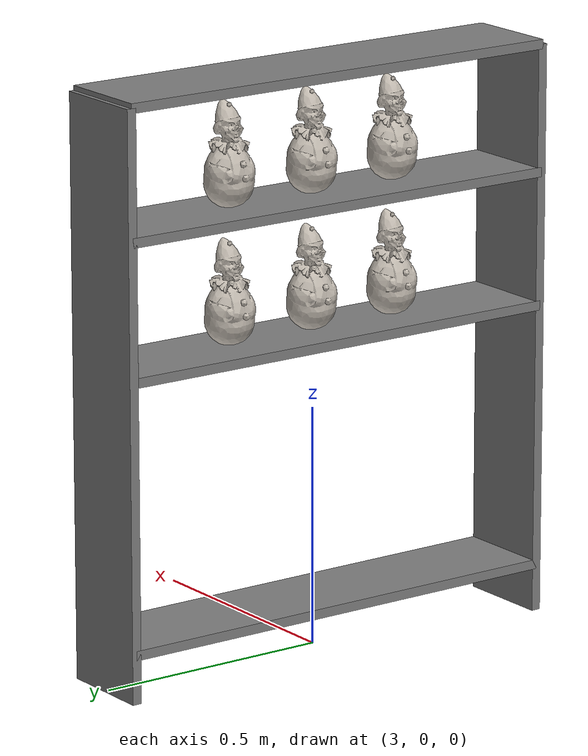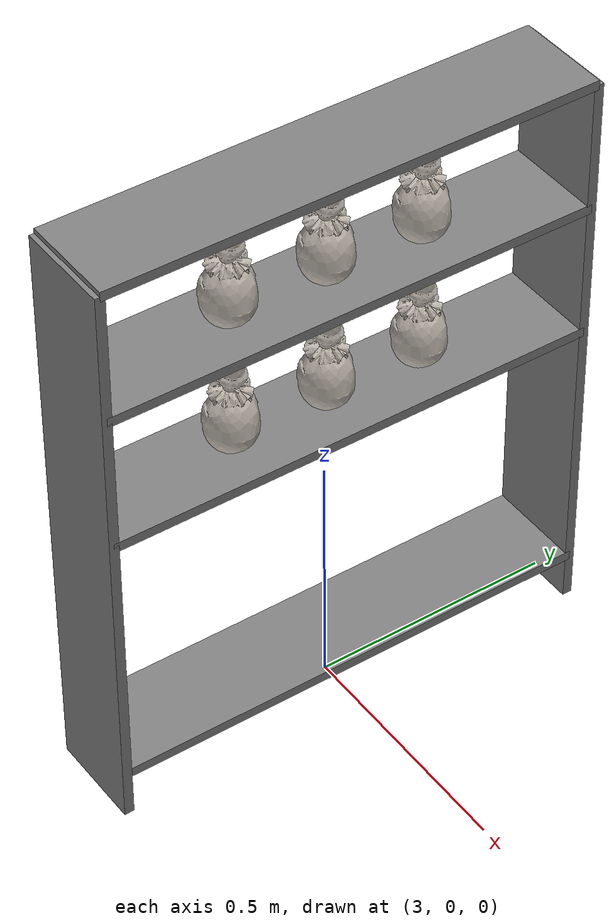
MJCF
<mujoco model="clown">
  <compiler angle="radian" meshdir="meshes" />
  <option gravity="0 0 -9.8"/>

<asset>
    <mesh name="clownbody" file="clown.obj" scale="0.002 0.002 0.002" />
    <texture type="2d" name="clowntexture" file="images/finalclowntexture.png"/>
    <material name="clownmaterial" texture="clowntexture" />

    <mesh name="clownstand" file="clownstand.STL" scale="0.001 0.001 0.001"/>
</asset>

<worldbody>
  <body name="clownpin3" pos=" 3 -0.20 0.665">
    <joint type="free"/>
    <geom name="hitbox3" type="cylinder" size="0.045 0.095" mass="0.014" pos="0 0 0.1" rgba="1 0 0 0"/>
    <geom type="mesh" mesh="clownbody" material="clownmaterial" euler="-55 -45.5 0" contype="0" conaffinity="0"/>
  </body>

  <body name="clownpin" pos="3 0 0.665" >
    <joint type="free"/>
    <geom name="hitbox1" type="cylinder" size="0.045 0.095" mass="0.014" pos="0 0 0.095" rgba="1 0 0 0"/>
    <geom type="mesh" mesh="clownbody" material="clownmaterial" euler="-55 -45.5 0" contype="0" conaffinity="0"/>
  </body>

  <body name="clownpin2" pos=" 3 0.20 0.665">
    <joint type="free"/>
    <geom name="hitbox2" type="cylinder" size="0.045 0.095" mass="0.014" pos="0 0 0.095" rgba="1 0 0 0"/>
    <geom type="mesh" mesh="clownbody" material="clownmaterial" euler="-55 -45.5 0" contype="0" conaffinity="0"/>
  </body>

  <body name="2ndfloorclownpin3" pos=" 3 -0.20 0.945">
    <joint type="free"/>
    <geom name="hitbox2.3" type="cylinder" size="0.045 0.095" mass="0.014" pos="0 0 0.095" rgba="1 0 0 0"/>
    <geom type="mesh" mesh="clownbody" material="clownmaterial" euler="-55 -45.5 0" contype="0" conaffinity="0"/>
  </body>

  <body name="2ndfloorclownpin" pos="3 0 0.945">
    <joint type="free"/>
    <geom name="hitbox2.1" type="cylinder" size="0.045 0.095" mass="0.014" pos="0 0 0.095" rgba="1 0 0 0"/>
    <geom type="mesh" mesh="clownbody" material="clownmaterial" euler="-55 -45.5 0" contype="0" conaffinity="0"/>
  </body>

  <body name="2ndfloorclownpin2" pos=" 3 0.20 0.945">
    <joint type="free"/>
    <geom name="hitbox2.2" type="cylinder" size="0.045 0.095" mass="0.014" pos="0 0 0.095" rgba="1 0 0 0"/>
    <geom type="mesh" mesh="clownbody" material="clownmaterial" euler="-55 -45.5 0" contype="0" conaffinity="0"/>
  </body>

  <body name="shelf" pos="3 0 0" euler="0 0 1.5708 ">
    <geom name="leftpanel" type="box" size="0.01 0.1 0.6" pos="-0.5 0 0.6" />
    <geom name="rightpanel" type="box" size="0.01 0.1 0.6" pos="0.5 0 0.6"/>
    <geom name="bottomshelf" type="box" size="0.5 0.1 0.01" pos="0 0 0.1"/>
    <geom name="middleshelftopmost" type="box" size="0.5 0.1 0.01" pos="0 0 0.935"/>
    <geom name="middleshelfbottommost" type="box" size="0.5 0.1 0.01" pos="0 0 0.655"/>
    <geom name="topshelf" type="box" size="0.5 0.1 0.01" pos="0 0 1.2"/>

  </body>

</worldbody>

</mujoco>
